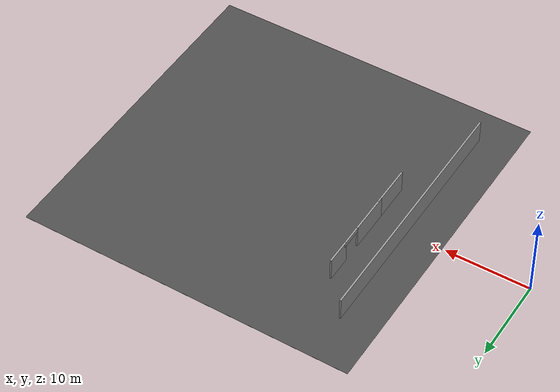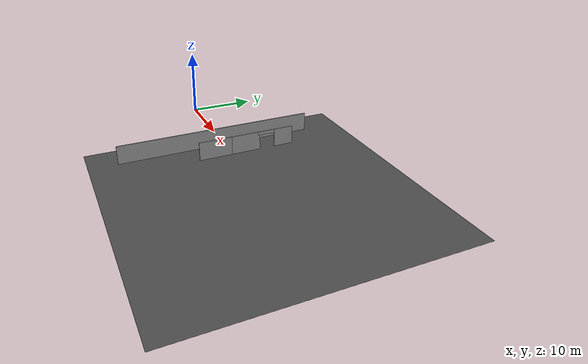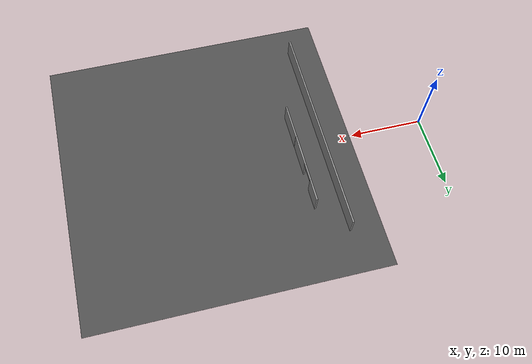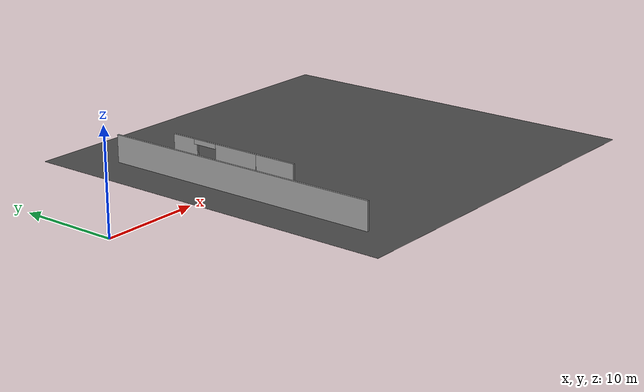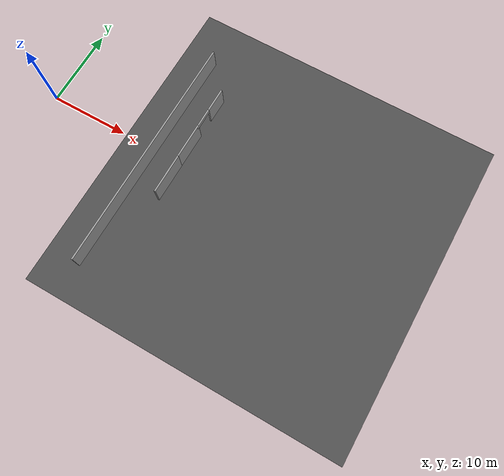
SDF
<sdf version="1.6">
 <world name="default">
  <model name="grey_wall_3">
   <static>1</static>
   <link name="link">
    <pose>0 0 1.4 0 -0 0</pose>
    <collision name="collision"><geometry><box><size>30 0.2 2.8</size></box></geometry></collision>
    <visual name="visual">
     <cast_shadows>0</cast_shadows>
     <geometry><box><size>30 0.2 2.8</size></box></geometry>
     <material>
      <script>
       <uri>model://grey_wall/materials/scripts</uri>
       <uri>model://grey_wall/materials/textures</uri>
       <name>vrc/grey_wall</name>
      </script>
     </material>
    </visual>
   </link>
   <pose>14.7292 -1.22253 0 0 -0 1.57</pose>
  </model>
  <model name="grey_wall_15">
   <static>1</static>
   <link name="link">
    <pose>0 0 1.4 0 -0 0</pose>
    <collision name="collision"><geometry><box><size>5 0.2 2.8</size></box></geometry></collision>
    <visual name="visual">
     <cast_shadows>0</cast_shadows>
     <geometry><box><size>5 0.2 2.8</size></box></geometry>
     <material>
      <script>
       <uri>model://grey_wall/materials/scripts</uri>
       <uri>model://grey_wall/materials/textures</uri>
       <name>vrc/grey_wall</name>
      </script>
     </material>
    </visual>
   </link>
   <pose>18.3083 -2.60986 0 0 -0 1.57</pose>
  </model>
  <model name="grey_wall_13_clone">
   <static>1</static>
   <link name="link">
    <pose>0 0 1.4 0 -0 0</pose>
    <collision name="collision"><geometry><box><size>5 0.2 2.8</size></box></geometry></collision>
    <visual name="visual">
     <cast_shadows>0</cast_shadows>
     <geometry><box><size>5 0.2 2.8</size></box></geometry>
     <material>
      <script>
       <uri>model://grey_wall/materials/scripts</uri>
       <uri>model://grey_wall/materials/textures</uri>
       <name>vrc/grey_wall</name>
      </script>
     </material>
    </visual>
   </link>
   <pose>18.2978 1.85852 0 0 -0 1.57</pose>
  </model>
  <model name="grey_wall_14">
   <static>1</static>
   <link name="link">
    <pose>0 0 1.4 0 -0 0</pose>
    <collision name="collision"><geometry><box><size>3 0.2 2.8</size></box></geometry></collision>
    <visual name="visual">
     <cast_shadows>0</cast_shadows>
     <geometry><box><size>3 0.2 2.8</size></box></geometry>
     <material>
      <script>
       <uri>model://grey_wall/materials/scripts</uri>
       <uri>model://grey_wall/materials/textures</uri>
       <name>vrc/grey_wall</name>
      </script>
     </material>
    </visual>
   </link>
   <pose>18.3076 8.19236 0 0 -0 1.57</pose>
  </model>
  <model name="asphalt_plane">
   <static>1</static>
   <link name="link">
    <collision name="collision"><geometry><box><size>40 40 0.01</size></box></geometry></collision>
    <visual name="visual">
     <cast_shadows>0</cast_shadows>
     <geometry><box><size>40 40 0.01</size></box></geometry>
     <material>
      <script>
       <uri>model://asphalt_plane/materials/scripts</uri>
       <uri>model://asphalt_plane/materials/textures</uri>
       <name>vrc/asphalt</name>
      </script>
     </material>
    </visual>
   </link>
   <pose>30.3856 -0.465765 0 0 -0 1.57</pose>
  </model>
  <model name="grey_wall_2_clone_clone_2">
   <static>1</static>
   <link name="link">
    <pose>0 0 1.4 0 -0 0</pose>
    <collision name="collision"><geometry><box><size>3 0.2 0.5</size></box></geometry></collision>
    <visual name="visual">
     <cast_shadows>0</cast_shadows>
     <geometry><box><size>3 0.2 0.5</size></box></geometry>
     <material>
      <script>
       <uri>model://grey_wall/materials/scripts</uri>
       <uri>model://grey_wall/materials/textures</uri>
       <name>vrc/grey_wall</name>
      </script>
     </material>
    </visual>
   </link>
   <pose>18.3027 5.57138 1.14748 0 0 -1.57</pose>
  </model>
 </world>
</sdf>
